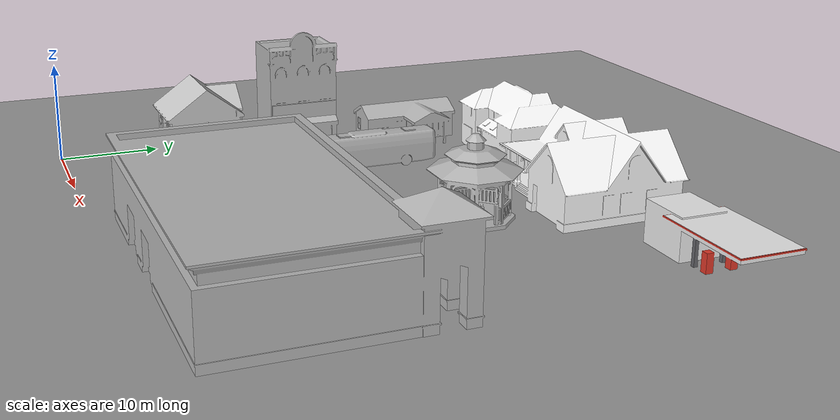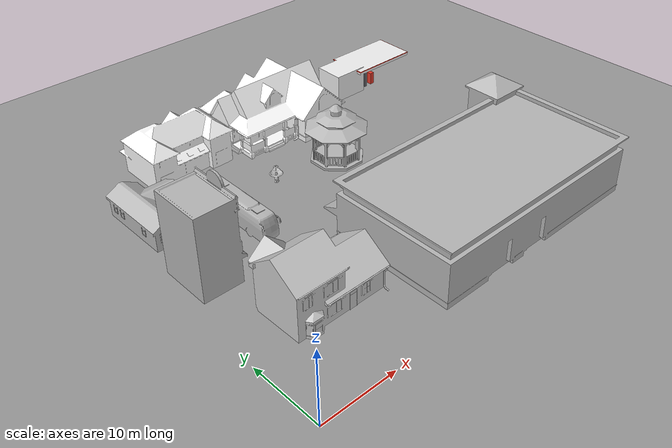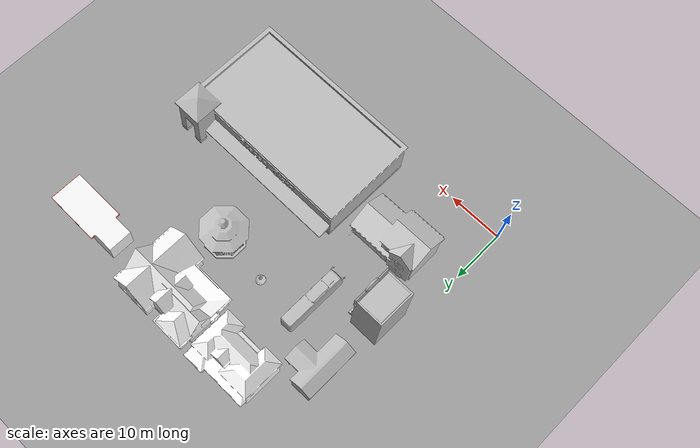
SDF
<sdf version="1.6">
 <world name="default">
  <light name="sun" type="directional">
   <pose>0 0 10 0 -0 0</pose>
   <diffuse>0.8 0.8 0.8 1</diffuse>
   <specular>0.2 0.2 0.2 1</specular>
   <attenuation>
    <range>1000</range>
    <constant>0.9</constant>
    <linear>0.01</linear>
    <quadratic>0.001</quadratic>
   </attenuation>
   <direction>-0.5 0.1 -0.9</direction>
  </light>
  <gravity>0 0 -9.8</gravity>
  <magnetic_field>6e-06 2.3e-05 -4.2e-05</magnetic_field>
  <atmosphere type="adiabatic"/>
  <physics name="default_physics" default="0" type="ode">
   <max_step_size>0.001</max_step_size>
   <real_time_factor>1</real_time_factor>
   <real_time_update_rate>1000</real_time_update_rate>
  </physics>
  <scene><ambient>0.4 0.4 0.4 1</ambient><background>0.7 0.7 0.7 1</background><shadows>1</shadows></scene>
  <spherical_coordinates>
   <surface_model>EARTH_WGS84</surface_model>
   <latitude_deg>0</latitude_deg>
   <longitude_deg>0</longitude_deg>
   <elevation>0</elevation>
   <heading_deg>0</heading_deg>
  </spherical_coordinates>
  <model name="House 1">
   <static>1</static>
   <link name="link">
    <collision name="collision">
     <geometry><mesh><uri>model://house_1/meshes/house_1.dae</uri><scale>1.5 1.5 1.5</scale></mesh></geometry>
    </collision>
    <visual name="visual">
     <geometry><mesh><uri>model://house_1/meshes/house_1.dae</uri><scale>1.5 1.5 1.5</scale></mesh></geometry>
     <material>
      <script>
       <uri>model://house_1/materials/scripts</uri>
       <uri>model://house_1/materials/textures</uri>
       <name>House_1/Diffuse</name>
      </script>
      <shader type="normal_map_tangent_space"><normal_map>House_1_Normal.png</normal_map></shader>
     </material>
    </visual>
   </link>
   <pose>30.6434 45.1702 0 0 -0 0</pose>
  </model>
  <model name="House 2">
   <static>1</static>
   <link name="link">
    <collision name="collision">
     <geometry><mesh><uri>model://house_2/meshes/house_2.dae</uri><scale>1.5 1.5 1.5</scale></mesh></geometry>
    </collision>
    <visual name="visual">
     <geometry><mesh><uri>model://house_2/meshes/house_2.dae</uri><scale>1.5 1.5 1.5</scale></mesh></geometry>
     <material>
      <script>
       <uri>model://house_2/materials/scripts</uri>
       <uri>model://house_2/materials/textures</uri>
       <uri>model://house_1/materials/textures</uri>
       <name>House_2/Diffuse</name>
      </script>
      <shader type="normal_map_tangent_space">
       <normal_map>model://house_1/materials/textures/House_1_Normal.png</normal_map>
      </shader>
     </material>
    </visual>
   </link>
   <pose>14.2979 45.7245 0 0 -0 0</pose>
  </model>
  <model name="House 3">
   <static>1</static>
   <link name="link">
    <collision name="collision">
     <geometry><mesh><uri>model://house_3/meshes/house_3.dae</uri><scale>1.5 1.5 1.5</scale></mesh></geometry>
    </collision>
    <visual name="visual">
     <geometry><mesh><uri>model://house_3/meshes/house_3.dae</uri><scale>1.5 1.5 1.5</scale></mesh></geometry>
     <material>
      <script>
       <uri>model://house_3/materials/scripts</uri>
       <uri>model://house_3/materials/textures</uri>
       <uri>model://house_1/materials/textures</uri>
       <name>House_3/Diffuse</name>
      </script>
      <shader type="normal_map_tangent_space">
       <normal_map>model://house_1/materials/textures/House_1_Normal.png</normal_map>
      </shader>
     </material>
    </visual>
   </link>
   <pose>12.1295 13.0478 0 0 -0 0.011321</pose>
  </model>
  <model name="gazebo">
   <static>1</static>
   <link name="link">
    <collision name="collision">
     <geometry><mesh><scale>3 3 2.5</scale><uri>model://gazebo/meshes/gazebo.dae</uri></mesh></geometry>
    </collision>
    <visual name="visual">
     <geometry><mesh><scale>3 3 2.5</scale><uri>model://gazebo/meshes/gazebo.dae</uri></mesh></geometry>
    </visual>
   </link>
   <pose>31.7245 32.7647 0 0 -0 0</pose>
  </model>
  <model name="grocery_store">
   <static>1</static>
   <link name="link">
    <collision name="collision">
     <pose>0 0 4.04605 0 -0 0</pose>
     <geometry><box><size>32.1985 17.5425 8.09209</size></box></geometry>
    </collision>
    <visual name="visual">
     <pose>0 -1.96155 0 0 -0 0</pose>
     <geometry><mesh><uri>model://grocery_store/meshes/grocery_store.dae</uri></mesh></geometry>
    </visual>
   </link>
   <pose>36.1848 11.0672 0 0 -0 0</pose>
  </model>
  <model name="post_office">
   <static>1</static>
   <link name="link">
    <collision name="collision">
     <geometry><mesh><uri>model://post_office/meshes/post_office.dae</uri></mesh></geometry>
    </collision>
    <visual name="visual">
     <geometry><mesh><uri>model://post_office/meshes/post_office.dae</uri></mesh></geometry>
    </visual>
   </link>
   <pose>4.77446 37.0361 0 0 0 -1.56246</pose>
  </model>
  <model name="ground_plane_0">
   <static>1</static>
   <link name="link">
    <collision name="collision">
     <geometry><plane><normal>0 0 1</normal><size>100 100</size></plane></geometry>
     <surface><friction><ode><mu>100</mu><mu2>50</mu2></ode></friction></surface>
    </collision>
    <visual name="visual">
     <cast_shadows>0</cast_shadows>
     <geometry><plane><normal>0 0 1</normal><size>100 100</size></plane></geometry>
     <material>
      <script><uri>file://media/materials/scripts/gazebo.material</uri><name>Gazebo/Grey</name></script>
     </material>
    </visual>
   </link>
   <pose>50 50 0 0 -0 0</pose>
  </model>
  <model name="Gas Station">
   <static>1</static>
   <link name="link">
    <collision name="collision">
     <geometry><mesh><uri>model://gas_station/meshes/gas_station.dae</uri></mesh></geometry>
    </collision>
    <visual name="visual">
     <geometry><mesh><uri>model://gas_station/meshes/gas_station.dae</uri></mesh></geometry>
     <material>
      <script>
       <uri>model://gas_station/materials/scripts</uri>
       <uri>model://gas_station/materials/textures</uri>
       <name>GasStation/Diffuse</name>
      </script>
      <shader type="normal_map_tangent_space"><normal_map>GasStation_Normal.png</normal_map></shader>
     </material>
    </visual>
   </link>
   <pose>48.6115 46.1354 0 0 -0 0</pose>
  </model>
  <model name="fountain">
   <static>1</static>
   <link name="link">
    <collision name="collision">
     <geometry><mesh><uri>model://fountain/meshes/fountain.dae</uri></mesh></geometry>
    </collision>
    <visual name="visual">
     <geometry><mesh><uri>model://fountain/meshes/fountain.dae</uri></mesh></geometry>
    </visual>
   </link>
   <pose>22.1163 33.8214 0 0 -0 0</pose>
  </model>
  <model name="bus">
   <static>1</static>
   <link name="link">
    <collision name="collision">
     <geometry><mesh><scale>0.01 0.01 0.01</scale><uri>model://bus/meshes/bus.obj</uri></mesh></geometry>
    </collision>
    <visual name="visual">
     <geometry><mesh><scale>0.01 0.01 0.01</scale><uri>model://bus/meshes/bus.obj</uri></mesh></geometry>
    </visual>
   </link>
   <pose>13.7706 30.2876 0 0 -0 0</pose>
  </model>
  <model name="salon">
   <static>1</static>
   <link name="link">
    <collision name="collision">
     <pose>0 0 5.69469 0 -0 0</pose>
     <geometry><box><size>7.21297 5.37875 11.3894</size></box></geometry>
    </collision>
    <visual name="visual">
     <pose>0 -0.903605 0 0 -0 0</pose>
     <geometry><mesh><uri>model://salon/meshes/salon.dae</uri></mesh></geometry>
    </visual>
   </link>
   <pose>4.46691 24.5538 0 0 -0 1.57029</pose>
  </model>
 </world>
</sdf>
